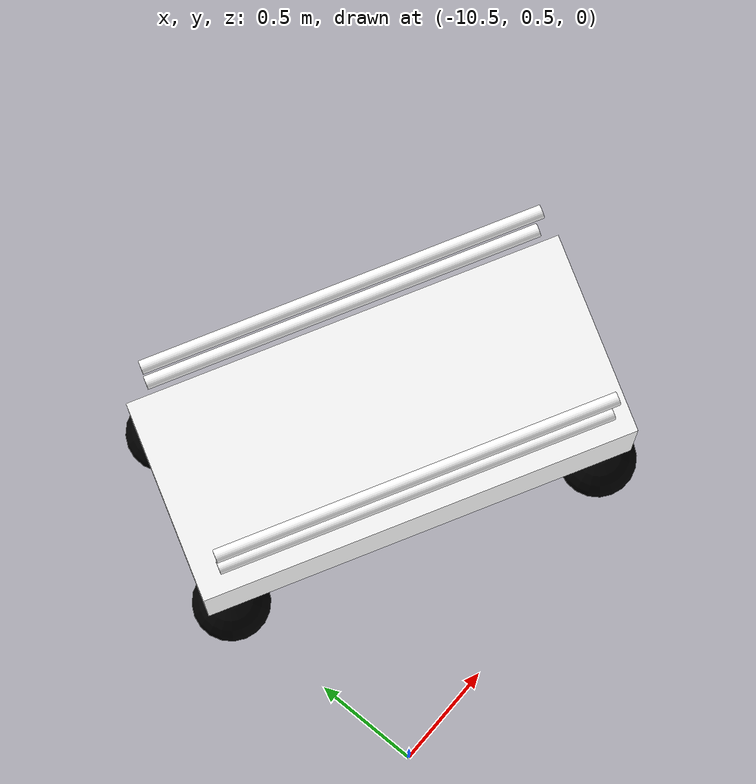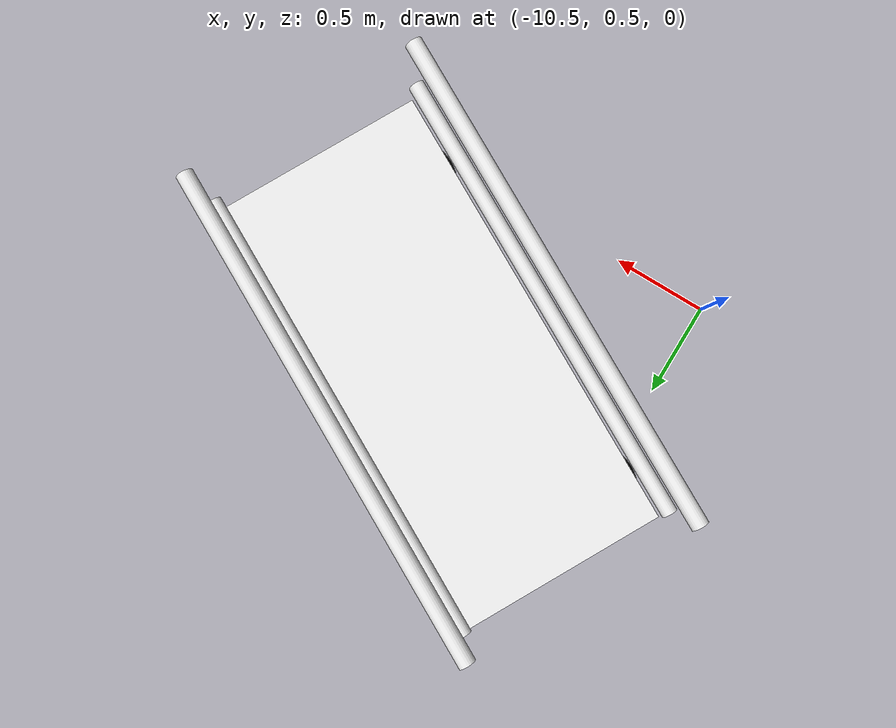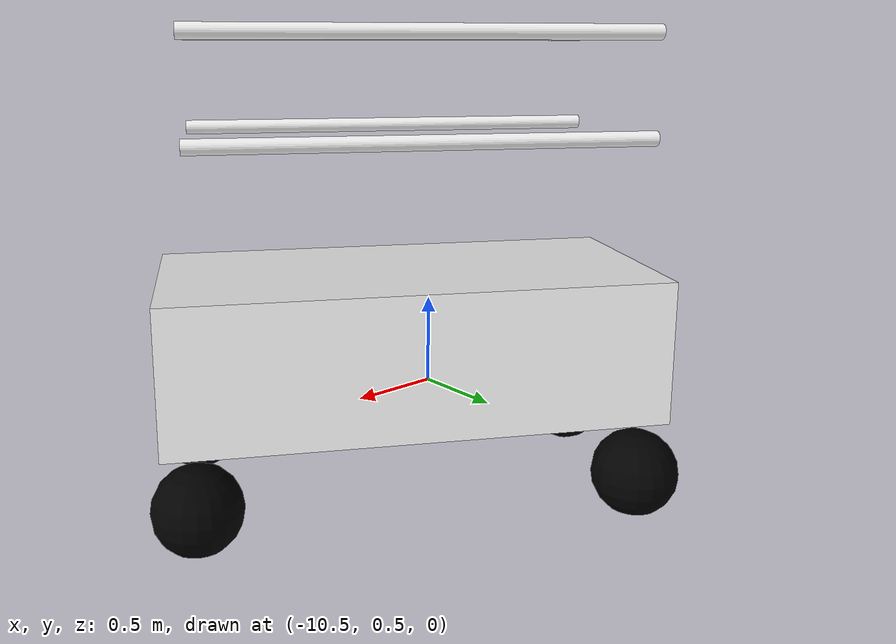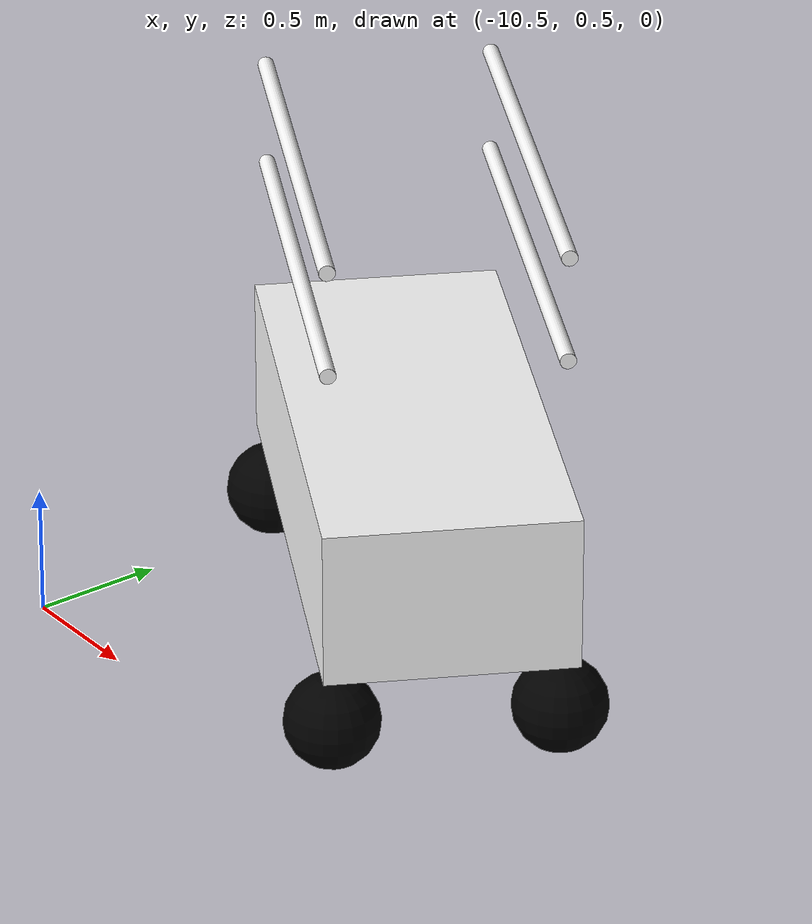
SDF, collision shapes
<?xml version="1.0" encoding="UTF-8"?>
<sdf version='1.9'>
  <model name='meccanum'>

      <include>
          <pose>-9.4 1.6 0 0 0 -0.5</pose>
          <uri>https://fuel.gazebosim.org/1.0/OpenRobotics/models/Mecanum lift</uri>
      </include>

      <!-- Moving Forward: w -->
      <plugin filename="gz-sim-triggered-publisher-system"
        name="gz::sim::systems::TriggeredPublisher">
          <input type="gz.msgs.Int32" topic="/keyboard/keypress">
              <match field="data">87</match>
          </input>
          <output type="gz.msgs.Twist" topic="/model/Mecanum_lift/cmd_vel">
                  linear: {x: 1.0, y: 0.0}, angular: {z: 0.0}
          </output>
      </plugin>

      <!-- Moving Backward: x -->
      <plugin filename="gz-sim-triggered-publisher-system"
        name="gz::sim::systems::TriggeredPublisher">
          <input type="gz.msgs.Int32" topic="/keyboard/keypress">
              <match field="data">88</match>
          </input>
          <output type="gz.msgs.Twist" topic="/model/Mecanum_lift/cmd_vel">
                  linear: {x: -1.0, y: 0.0}, angular: {z: 0.0}
          </output>
      </plugin>

      <!-- Moving right: d -->
      <plugin filename="gz-sim-triggered-publisher-system"
        name="gz::sim::systems::TriggeredPublisher">
          <input type="gz.msgs.Int32" topic="/keyboard/keypress">
              <match field="data">68</match>
          </input>
          <output type="gz.msgs.Twist" topic="/model/Mecanum_lift/cmd_vel">
                  linear: {x: 0.0, y: -1.0}, angular: {z: 0.0}
          </output>
      </plugin>

      <!--Moving left: a -->
      <plugin filename="gz-sim-triggered-publisher-system"
        name="gz::sim::systems::TriggeredPublisher">
          <input type="gz.msgs.Int32" topic="/keyboard/keypress">
              <match field="data">65</match>
          </input>
          <output type="gz.msgs.Twist" topic="/model/Mecanum_lift/cmd_vel">
                  linear: {x: 0.0, y: 1.0}, angular: {z: 0.0}
          </output>
      </plugin>

      <!-- Rotating right: e -->
      <plugin filename="gz-sim-triggered-publisher-system"
        name="gz::sim::systems::TriggeredPublisher">
          <input type="gz.msgs.Int32" topic="/keyboard/keypress">
              <match field="data">69</match>
          </input>
          <output type="gz.msgs.Twist" topic="/model/Mecanum_lift/cmd_vel">
                  linear: {x: 0.0, y: 0.0}, angular: {z: -1.0}
          </output>
      </plugin>

      <!--Rotating left: q -->
      <plugin filename="gz-sim-triggered-publisher-system"
        name="gz::sim::systems::TriggeredPublisher">
          <input type="gz.msgs.Int32" topic="/keyboard/keypress">
              <match field="data">81</match>
          </input>
          <output type="gz.msgs.Twist" topic="/model/Mecanum_lift/cmd_vel">
                  linear: {x: 0.0, y: 0.0}, angular: {z: 1.0}
          </output>
      </plugin>

      <!--Stop: s -->
      <plugin filename="gz-sim-triggered-publisher-system"
        name="gz::sim::systems::TriggeredPublisher">
          <input type="gz.msgs.Int32" topic="/keyboard/keypress">
              <match field="data">83</match>
          </input>
          <output type="gz.msgs.Twist" topic="/model/Mecanum_lift/cmd_vel">
                  linear: {x: 0.0, y: 0.0}, angular: {z: 0.0}
          </output>
      </plugin>
      <!--IMU_sensor-->
      <plugin filename="gz-sim-imu-system"
          name="gz::sim::systems::Imu">
      </plugin>

      <plugin
      filename="gz-sim-physics-system"
      name="gz::sim::systems::Physics">
      </plugin>

      <plugin
        filename="gz-sim-user-commands-system"
        name="gz::sim::systems::UserCommands">
      </plugin>
      <plugin
        filename="gz-sim-scene-broadcaster-system"
        name="gz::sim::systems::SceneBroadcaster">
      </plugin>

  </model>
</sdf>

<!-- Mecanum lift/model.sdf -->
<sdf version="1.7">
    <model name="Mecanum lift" xmlns:ignition="https://ignitionrobotics.org/schema">
        <link name="chassis">
            <inertial>
                <mass>1.14395</mass>
                <inertia>
                    <ixx>0.126164</ixx>
                    <ixy>0</ixy>
                    <ixz>0</ixz>
                    <iyy>0.416519</iyy>
                    <iyz>0</iyz>
                    <izz>0.481014</izz>
                </inertia>
            </inertial>
            <collision name="scissor">
                <pose>-0.03 -0.132 0.708 0 0 0</pose>
                <geometry>
                    <box>
                        <size>2.04 0.936 0.6</size>
                    </box>
                </geometry>
            </collision>
            <collision name="bar_1">
                <pose>-0.042 0.294 1.98 0 1.57 0</pose>
                <geometry>
                    <cylinder>
                        <radius>0.03</radius>
                        <length>1.8</length>
                    </cylinder>
                </geometry>
            </collision>
            <collision name="bar_2">
                <pose>-0.042 0.294 1.578 0 1.57 0</pose>
                <geometry>
                    <cylinder>
                        <radius>0.03</radius>
                        <length>1.8</length>
                    </cylinder>
                </geometry>
            </collision>
            <collision name="bar_3">
                <pose>-0.042 -0.558 1.578 0 1.57 0</pose>
                <geometry>
                    <cylinder>
                        <radius>0.03</radius>
                        <length>1.8</length>
                    </cylinder>
                </geometry>
            </collision>
            <collision name="bar_4">
                <pose>-0.042 -0.558 1.98 0 1.57 0</pose>
                <geometry>
                    <cylinder>
                        <radius>0.03</radius>
                        <length>1.8</length>
                    </cylinder>
                </geometry>
            </collision>
            <visual name="visual">
                <pose>0 0 -0.084 1.57 0 0</pose>
                <geometry>
                    <mesh>
                        <scale>0.6 0.6 0.6</scale>
                        <uri>meshes/MecanumLift.dae</uri>
                    </mesh>
                </geometry>
                <material>
                    <diffuse>1.0 1.0 1.0</diffuse>
                    <specular>1.0 1.0 1.0</specular>
                    <pbr>
                        <metal>
                            <albedo_map>materials/textures/Forklift_Forklift_BaseColor.png</albedo_map>
                            <normal_map>materials/textures/Forklift_Forklift_Normal.png</normal_map>
                            <metalness_map>materials/textures/Forklift_Forklift_Metallic.png</metalness_map>
                            <roughness_map>materials/textures/Forklift_Forklift_Roughness.png</roughness_map>
                            <environment_map>https://fuel.ignitionrobotics.org/1.0/openrobotics/models/Reflective table/1/files/materials/textures/DepotEnvMap.dds</environment_map>
                        </metal>
                    </pbr>
                    <!-- fallback to script if no PBR support-->
                    <script>
                        <uri>materials/scripts/</uri>
                        <uri>materials/textures/</uri>
                        <name>UrbanTile/Forklift_Diffuse</name>
                    </script>
                </material>
            </visual>
        </link>
        <link name="front_right_wheel">
            <pose>0.858 -0.552 0.186 0 0 0</pose>
            <inertial>
                <mass>2</mass>
                <inertia>
                    <ixx>0.145833</ixx>
                    <ixy>0</ixy>
                    <ixz>0</ixz>
                    <iyy>0.145833</iyy>
                    <iyz>0</iyz>
                    <izz>0.125</izz>
                </inertia>
            </inertial>
            <collision name="collision">
                <geometry>
                    <sphere>
                        <radius>0.18</radius>
                    </sphere>
                </geometry>
                <surface>
                    <friction>
                        <ode>
                            <mu>1.0</mu>
                            <mu2>0.0</mu2>
                            <fdir1 ignition:expressed_in="chassis">1 1 0</fdir1>
                        </ode>
                    </friction>
                </surface>
            </collision>
            <visual name="visual">
                <geometry>
                    <mesh>
                        <uri>meshes/mecanum_wheel_right.STL</uri>
                        <scale>0.0036 0.0036 0.0036</scale>
                    </mesh>
                </geometry>
                <material>
                    <ambient>0 0 0</ambient>
                    <diffuse>0 0 0</diffuse>
                    <specular>1.0 1.0 1.0</specular>
                </material>
            </visual>
        </link>
        <link name="rear_right_wheel">
            <pose>-0.93 -0.552 0.186 0 0 0</pose>
            <inertial>
                <mass>2</mass>
                <inertia>
                    <ixx>0.145833</ixx>
                    <ixy>0</ixy>
                    <ixz>0</ixz>
                    <iyy>0.145833</iyy>
                    <iyz>0</iyz>
                    <izz>0.125</izz>
                </inertia>
            </inertial>
            <collision name="collision">
                <geometry>
                    <sphere>
                        <radius>0.18</radius>
                    </sphere>
                </geometry>
                <surface>
                    <friction>
                        <ode>
                            <mu>1.0</mu>
                            <mu2>0.0</mu2>
                            <fdir1 ignition:expressed_in="chassis">1 -1 0</fdir1>
                        </ode>
                    </friction>
                </surface>
            </collision>
            <visual name="visual">
                <geometry>
                    <mesh>
                        <uri>meshes/mecanum_wheel_left.STL</uri>
                        <scale>0.0036 0.0036 0.0036</scale>
                    </mesh>
                </geometry>
                <material>
                    <ambient>0 0 0</ambient>
                    <diffuse>0 0 0</diffuse>
                    <specular>1.0 1.0 1.0</specular>
                </material>
            </visual>
        </link>
        <link name="front_left_wheel">
            <pose>0.858 0.282 0.186 0 0 0</pose>
            <inertial>
                <mass>2</mass>
                <inertia>
                    <ixx>0.145833</ixx>
                    <ixy>0</ixy>
                    <ixz>0</ixz>
                    <iyy>0.145833</iyy>
                    <iyz>0</iyz>
                    <izz>0.125</izz>
                </inertia>
            </inertial>
            <collision name="collision">
                <geometry>
                    <sphere>
                        <radius>0.18</radius>
                    </sphere>
                </geometry>
                <surface>
                    <friction>
                        <ode>
                            <mu>1.0</mu>
                            <mu2>0.0</mu2>
                            <fdir1 ignition:expressed_in="chassis">1 -1 0</fdir1>
                        </ode>
                    </friction>
                </surface>
            </collision>
            <visual name="visual">
                <geometry>
                    <mesh>
                        <uri>meshes/mecanum_wheel_left.STL</uri>
                        <scale>0.0036 0.0036 0.0036</scale>
                    </mesh>
                </geometry>
                <material>
                    <ambient>0 0 0</ambient>
                    <diffuse>0 0 0</diffuse>
                    <specular>1.0 1.0 1.0</specular>
                </material>
            </visual>
        </link>
        <link name="rear_left_wheel">
            <pose>-0.93 0.282 0.186 0 0 0</pose>
            <inertial>
                <mass>2</mass>
                <inertia>
                    <ixx>0.145833</ixx>
                    <ixy>0</ixy>
                    <ixz>0</ixz>
                    <iyy>0.145833</iyy>
                    <iyz>0</iyz>
                    <izz>0.125</izz>
                </inertia>
            </inertial>
            <collision name="collision">
                <geometry>
                    <sphere>
                        <radius>0.18</radius>
                    </sphere>
                </geometry>
                <surface>
                    <friction>
                        <ode>
                            <mu>1.0</mu>
                            <mu2>0.0</mu2>
                            <fdir1 ignition:expressed_in="chassis">1 1 0</fdir1>
                        </ode>
                    </friction>
                </surface>
            </collision>
            <visual name="visual">
                <geometry>
                    <mesh>
                        <uri>meshes/mecanum_wheel_right.STL</uri>
                        <scale>0.0036 0.0036 0.0036</scale>
                    </mesh>
                </geometry>
                <material>
                    <ambient>0 0 0</ambient>
                    <diffuse>0 0 0</diffuse>
                    <specular>1.0 1.0 1.0</specular>
                </material>
            </visual>
        </link>
        <joint name="front_left_wheel_joint" type="revolute">
            <parent>chassis</parent>
            <child>front_left_wheel</child>
            <axis>
                <xyz>0 1 0</xyz>
                <limit>
                    <lower>-1.79769e+308</lower>
                    <upper>1.79769e+308</upper>
                </limit>
            </axis>
        </joint>
        <joint name="front_right_wheel_joint" type="revolute">
            <parent>chassis</parent>
            <child>front_right_wheel</child>
            <axis>
                <xyz>0 1 0</xyz>
                <limit>
                    <lower>-1.79769e+308</lower>
                    <upper>1.79769e+308</upper>
                </limit>
            </axis>
        </joint>
        <joint name="rear_left_wheel_joint" type="revolute">
            <parent>chassis</parent>
            <child>rear_left_wheel</child>
            <axis>
                <xyz>0 1 0</xyz>
                <limit>
                    <lower>-1.79769e+308</lower>
                    <upper>1.79769e+308</upper>
                </limit>
            </axis>
        </joint>
        <joint name="rear_right_wheel_joint" type="revolute">
            <parent>chassis</parent>
            <child>rear_right_wheel</child>
            <axis>
                <xyz>0 1 0</xyz>
                <limit>
                    <lower>-1.79769e+308</lower>
                    <upper>1.79769e+308</upper>
                </limit>
            </axis>
        </joint>
        <plugin filename="ignition-gazebo-mecanum-drive-system" name="ignition::gazebo::systems::MecanumDrive">
            <front_left_joint>front_left_wheel_joint</front_left_joint>
            <back_left_joint>rear_left_wheel_joint</back_left_joint>
            <front_right_joint>front_right_wheel_joint</front_right_joint>
            <back_right_joint>rear_right_wheel_joint</back_right_joint>
            <wheel_separation>0.834</wheel_separation>
            <wheelbase>1.788</wheelbase>
            <wheel_radius>0.18</wheel_radius>
        </plugin>
    </model>
</sdf>
